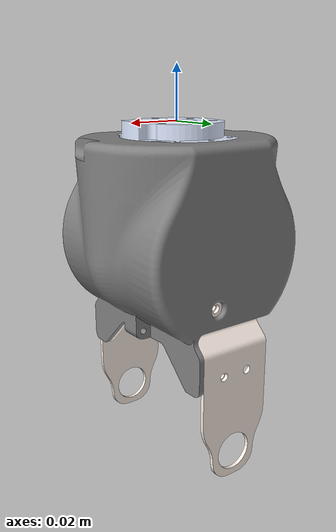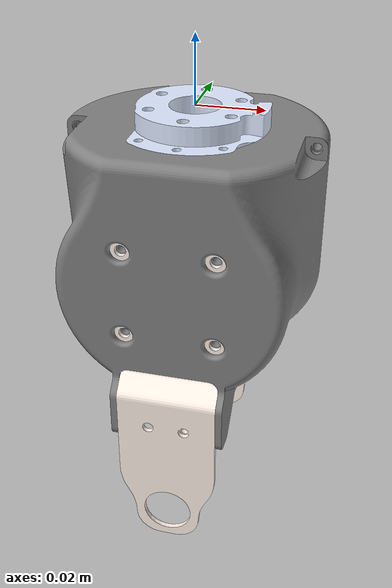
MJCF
<mujoco model="link5_obj">
  <asset>
    <mesh name="link5_00" file="link5_00.obj"/>
    <mesh name="link5_01" file="link5_01.obj"/>
    <mesh name="link5_02" file="link5_02.obj"/>
    <material name="link5_00_mat" rgba="0.501961 0.501961 0.501961 1.000000"/>
    <material name="link5_01_mat" rgba="0.866667 0.909804 1.000000 1.000000"/>
    <material name="link5_02_mat" rgba="1.000000 0.949020 0.909804 1.000000"/>
  </asset>
  <worldbody>
    <body name="link5_obj">
      <geom type="mesh" mesh="link5_00" material="link5_00_mat" contype="0" conaffinity="0" group="1"/>
      <geom type="mesh" mesh="link5_01" material="link5_01_mat" contype="0" conaffinity="0" group="1"/>
      <geom type="mesh" mesh="link5_02" material="link5_02_mat" contype="0" conaffinity="0" group="1"/>
    </body>
  </worldbody>
</mujoco>
